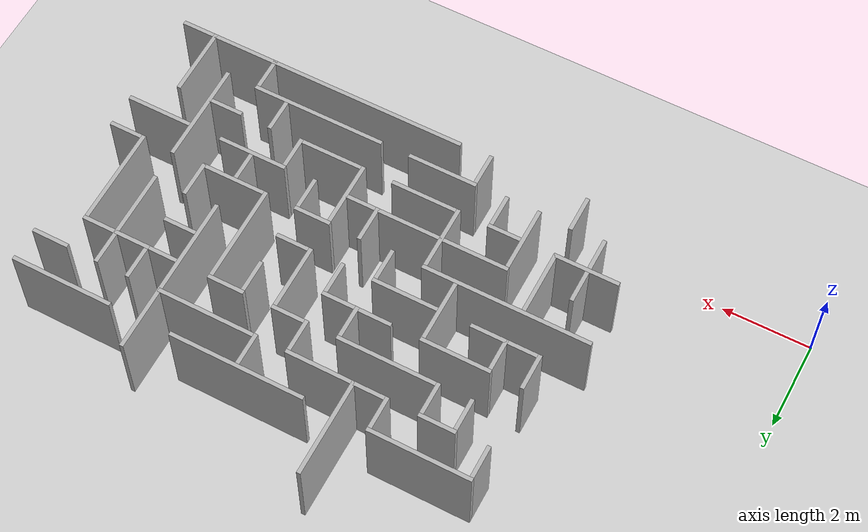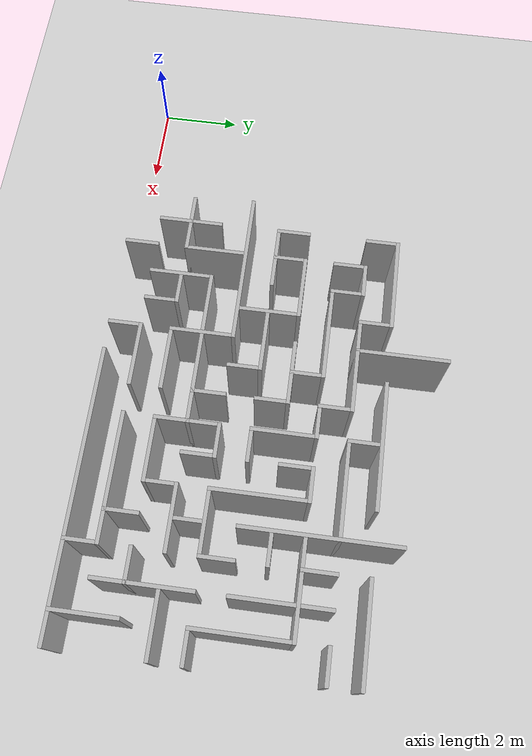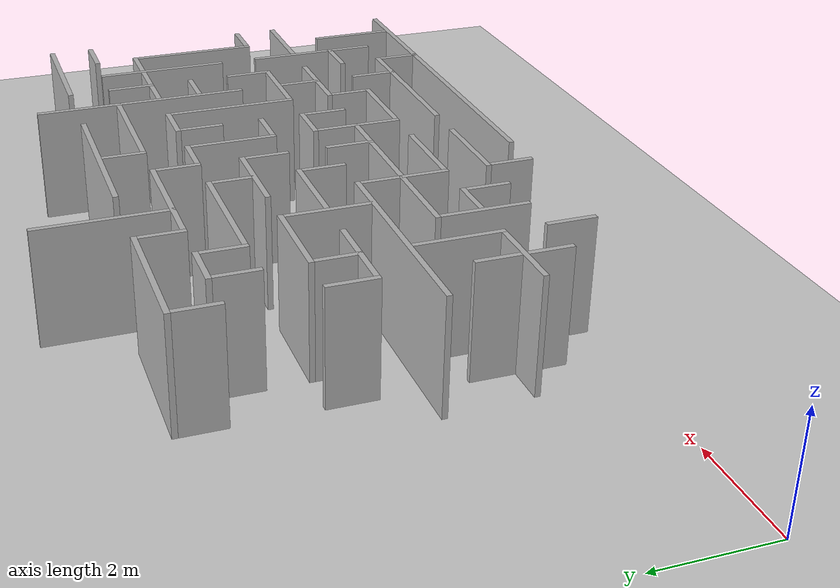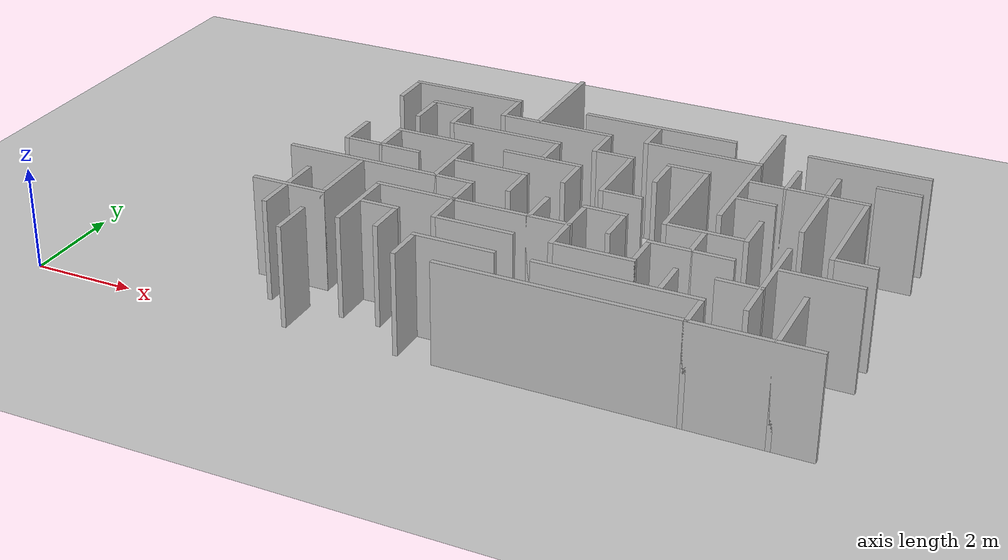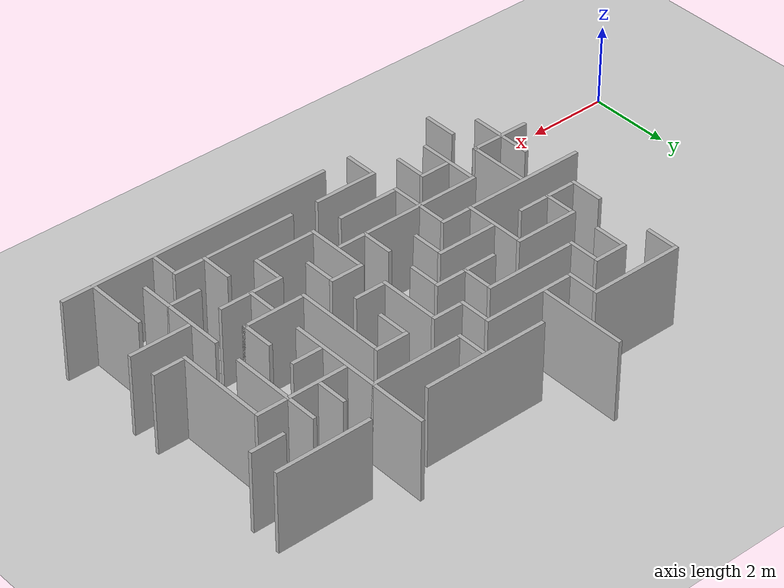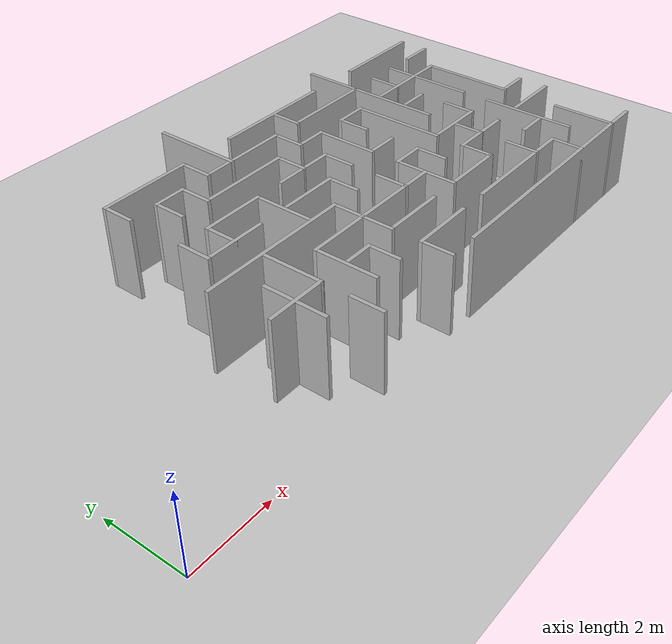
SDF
<sdf version="1.6">
 <world name="slam_world">
  <model name="ground_plane">
   <static>true</static>
   <link name="link">
    <collision name="collision">
     <geometry><plane><normal>0 0 1</normal><size>100 100</size></plane></geometry>
    </collision>
    <visual name="visual">
     <geometry><plane><normal>0 0 1</normal><size>100 100</size></plane></geometry>
     <material>
      <ambient>0.8 0.8 0.8 1</ambient>
      <diffuse>0.8 0.8 0.8 1</diffuse>
      <specular>0.8 0.8 0.8 1</specular>
     </material>
    </visual>
   </link>
  </model>
  <model name="wall_100">
   <static>true</static>
   <pose>7.500000000000001 7.083333333333334 1.0 0 0 0</pose>
   <link name="link">
    <collision name="collision">
     <geometry><box><size>0.0925925925925926 2.2222222222222223 2.0</size></box></geometry>
    </collision>
    <visual name="visual">
     <geometry><box><size>0.0925925925925926 2.2222222222222223 2.0</size></box></geometry>
     <material><ambient>0.5 0.5 0.5 1</ambient><diffuse>0.7 0.7 0.7 1</diffuse></material>
    </visual>
   </link>
  </model>
  <model name="wall_110">
   <static>true</static>
   <pose>11.944444444444446 5.601851851851852 1.0 0 0 0</pose>
   <link name="link">
    <collision name="collision">
     <geometry><box><size>0.0925925925925926 3.703703703703704 2.0</size></box></geometry>
    </collision>
    <visual name="visual">
     <geometry><box><size>0.0925925925925926 3.703703703703704 2.0</size></box></geometry>
     <material><ambient>0.5 0.5 0.5 1</ambient><diffuse>0.7 0.7 0.7 1</diffuse></material>
    </visual>
   </link>
  </model>
  <model name="wall_113">
   <static>true</static>
   <pose>5.648148148148149 6.7592592592592595 1.0 0 0 0</pose>
   <link name="link">
    <collision name="collision">
     <geometry><box><size>2.314814814814815 0.0925925925925926 2.0</size></box></geometry>
    </collision>
    <visual name="visual">
     <geometry><box><size>2.314814814814815 0.0925925925925926 2.0</size></box></geometry>
     <material><ambient>0.5 0.5 0.5 1</ambient><diffuse>0.7 0.7 0.7 1</diffuse></material>
    </visual>
   </link>
  </model>
  <model name="wall_114">
   <static>true</static>
   <pose>9.722222222222223 6.7592592592592595 1.0 0 0 0</pose>
   <link name="link">
    <collision name="collision">
     <geometry><box><size>3.055555555555556 0.0925925925925926 2.0</size></box></geometry>
    </collision>
    <visual name="visual">
     <geometry><box><size>3.055555555555556 0.0925925925925926 2.0</size></box></geometry>
     <material><ambient>0.5 0.5 0.5 1</ambient><diffuse>0.7 0.7 0.7 1</diffuse></material>
    </visual>
   </link>
  </model>
  <model name="wall_115">
   <static>true</static>
   <pose>13.796296296296298 6.7592592592592595 1.0 0 0 0</pose>
   <link name="link">
    <collision name="collision">
     <geometry><box><size>2.314814814814815 0.0925925925925926 2.0</size></box></geometry>
    </collision>
    <visual name="visual">
     <geometry><box><size>2.314814814814815 0.0925925925925926 2.0</size></box></geometry>
     <material><ambient>0.5 0.5 0.5 1</ambient><diffuse>0.7 0.7 0.7 1</diffuse></material>
    </visual>
   </link>
  </model>
  <model name="wall_118">
   <static>true</static>
   <pose>4.537037037037037 6.3425925925925934 1.0 0 0 0</pose>
   <link name="link">
    <collision name="collision">
     <geometry><box><size>0.0925925925925926 0.7407407407407408 2.0</size></box></geometry>
    </collision>
    <visual name="visual">
     <geometry><box><size>0.0925925925925926 0.7407407407407408 2.0</size></box></geometry>
     <material><ambient>0.5 0.5 0.5 1</ambient><diffuse>0.7 0.7 0.7 1</diffuse></material>
    </visual>
   </link>
  </model>
  <model name="wall_119">
   <static>true</static>
   <pose>6.7592592592592595 6.3425925925925934 1.0 0 0 0</pose>
   <link name="link">
    <collision name="collision">
     <geometry><box><size>0.0925925925925926 0.7407407407407408 2.0</size></box></geometry>
    </collision>
    <visual name="visual">
     <geometry><box><size>0.0925925925925926 0.7407407407407408 2.0</size></box></geometry>
     <material><ambient>0.5 0.5 0.5 1</ambient><diffuse>0.7 0.7 0.7 1</diffuse></material>
    </visual>
   </link>
  </model>
  <model name="wall_120">
   <static>true</static>
   <pose>9.722222222222223 6.3425925925925934 1.0 0 0 0</pose>
   <link name="link">
    <collision name="collision">
     <geometry><box><size>0.0925925925925926 0.7407407407407408 2.0</size></box></geometry>
    </collision>
    <visual name="visual">
     <geometry><box><size>0.0925925925925926 0.7407407407407408 2.0</size></box></geometry>
     <material><ambient>0.5 0.5 0.5 1</ambient><diffuse>0.7 0.7 0.7 1</diffuse></material>
    </visual>
   </link>
  </model>
  <model name="wall_123">
   <static>true</static>
   <pose>5.648148148148149 6.018518518518519 1.0 0 0 0</pose>
   <link name="link">
    <collision name="collision">
     <geometry><box><size>0.8333333333333334 0.0925925925925926 2.0</size></box></geometry>
    </collision>
    <visual name="visual">
     <geometry><box><size>0.8333333333333334 0.0925925925925926 2.0</size></box></geometry>
     <material><ambient>0.5 0.5 0.5 1</ambient><diffuse>0.7 0.7 0.7 1</diffuse></material>
    </visual>
   </link>
  </model>
  <model name="wall_124">
   <static>true</static>
   <pose>7.916666666666668 6.018518518518519 1.0 0 0 0</pose>
   <link name="link">
    <collision name="collision">
     <geometry><box><size>2.2222222222222223 0.0925925925925926 2.0</size></box></geometry>
    </collision>
    <visual name="visual">
     <geometry><box><size>2.2222222222222223 0.0925925925925926 2.0</size></box></geometry>
     <material><ambient>0.5 0.5 0.5 1</ambient><diffuse>0.7 0.7 0.7 1</diffuse></material>
    </visual>
   </link>
  </model>
  <model name="wall_125">
   <static>true</static>
   <pose>10.879629629629632 6.018518518518519 1.0 0 0 0</pose>
   <link name="link">
    <collision name="collision">
     <geometry><box><size>2.2222222222222223 0.0925925925925926 2.0</size></box></geometry>
    </collision>
    <visual name="visual">
     <geometry><box><size>2.2222222222222223 0.0925925925925926 2.0</size></box></geometry>
     <material><ambient>0.5 0.5 0.5 1</ambient><diffuse>0.7 0.7 0.7 1</diffuse></material>
    </visual>
   </link>
  </model>
  <model name="wall_126">
   <static>true</static>
   <pose>12.685185185185187 5.648148148148149 1.0 0 0 0</pose>
   <link name="link">
    <collision name="collision">
     <geometry><box><size>0.0925925925925926 0.8333333333333334 2.0</size></box></geometry>
    </collision>
    <visual name="visual">
     <geometry><box><size>0.0925925925925926 0.8333333333333334 2.0</size></box></geometry>
     <material><ambient>0.5 0.5 0.5 1</ambient><diffuse>0.7 0.7 0.7 1</diffuse></material>
    </visual>
   </link>
  </model>
  <model name="wall_127">
   <static>true</static>
   <pose>13.425925925925927 4.907407407407407 1.0 0 0 0</pose>
   <link name="link">
    <collision name="collision">
     <geometry><box><size>0.0925925925925926 2.314814814814815 2.0</size></box></geometry>
    </collision>
    <visual name="visual">
     <geometry><box><size>0.0925925925925926 2.314814814814815 2.0</size></box></geometry>
     <material><ambient>0.5 0.5 0.5 1</ambient><diffuse>0.7 0.7 0.7 1</diffuse></material>
    </visual>
   </link>
  </model>
  <model name="wall_128">
   <static>true</static>
   <pose>14.537037037037038 6.018518518518519 1.0 0 0 0</pose>
   <link name="link">
    <collision name="collision">
     <geometry><box><size>0.8333333333333334 0.0925925925925926 2.0</size></box></geometry>
    </collision>
    <visual name="visual">
     <geometry><box><size>0.8333333333333334 0.0925925925925926 2.0</size></box></geometry>
     <material><ambient>0.5 0.5 0.5 1</ambient><diffuse>0.7 0.7 0.7 1</diffuse></material>
    </visual>
   </link>
  </model>
  <model name="wall_130">
   <static>true</static>
   <pose>5.277777777777779 5.601851851851852 1.0 0 0 0</pose>
   <link name="link">
    <collision name="collision">
     <geometry><box><size>0.0925925925925926 0.7407407407407408 2.0</size></box></geometry>
    </collision>
    <visual name="visual">
     <geometry><box><size>0.0925925925925926 0.7407407407407408 2.0</size></box></geometry>
     <material><ambient>0.5 0.5 0.5 1</ambient><diffuse>0.7 0.7 0.7 1</diffuse></material>
    </visual>
   </link>
  </model>
  <model name="wall_131">
   <static>true</static>
   <pose>6.018518518518519 5.601851851851852 1.0 0 0 0</pose>
   <link name="link">
    <collision name="collision">
     <geometry><box><size>0.0925925925925926 0.7407407407407408 2.0</size></box></geometry>
    </collision>
    <visual name="visual">
     <geometry><box><size>0.0925925925925926 0.7407407407407408 2.0</size></box></geometry>
     <material><ambient>0.5 0.5 0.5 1</ambient><diffuse>0.7 0.7 0.7 1</diffuse></material>
    </visual>
   </link>
  </model>
  <model name="wall_132">
   <static>true</static>
   <pose>8.981481481481483 5.601851851851852 1.0 0 0 0</pose>
   <link name="link">
    <collision name="collision">
     <geometry><box><size>0.0925925925925926 0.7407407407407408 2.0</size></box></geometry>
    </collision>
    <visual name="visual">
     <geometry><box><size>0.0925925925925926 0.7407407407407408 2.0</size></box></geometry>
     <material><ambient>0.5 0.5 0.5 1</ambient><diffuse>0.7 0.7 0.7 1</diffuse></material>
    </visual>
   </link>
  </model>
  <model name="wall_136">
   <static>true</static>
   <pose>7.1759259259259265 5.277777777777779 1.0 0 0 0</pose>
   <link name="link">
    <collision name="collision">
     <geometry><box><size>2.2222222222222223 0.0925925925925926 2.0</size></box></geometry>
    </collision>
    <visual name="visual">
     <geometry><box><size>2.2222222222222223 0.0925925925925926 2.0</size></box></geometry>
     <material><ambient>0.5 0.5 0.5 1</ambient><diffuse>0.7 0.7 0.7 1</diffuse></material>
    </visual>
   </link>
  </model>
  <model name="wall_137">
   <static>true</static>
   <pose>9.398148148148149 5.277777777777779 1.0 0 0 0</pose>
   <link name="link">
    <collision name="collision">
     <geometry><box><size>0.7407407407407408 0.0925925925925926 2.0</size></box></geometry>
    </collision>
    <visual name="visual">
     <geometry><box><size>0.7407407407407408 0.0925925925925926 2.0</size></box></geometry>
     <material><ambient>0.5 0.5 0.5 1</ambient><diffuse>0.7 0.7 0.7 1</diffuse></material>
    </visual>
   </link>
  </model>
  <model name="wall_138">
   <static>true</static>
   <pose>10.833333333333334 5.277777777777779 1.0 0 0 0</pose>
   <link name="link">
    <collision name="collision">
     <geometry><box><size>0.8333333333333334 0.0925925925925926 2.0</size></box></geometry>
    </collision>
    <visual name="visual">
     <geometry><box><size>0.8333333333333334 0.0925925925925926 2.0</size></box></geometry>
     <material><ambient>0.5 0.5 0.5 1</ambient><diffuse>0.7 0.7 0.7 1</diffuse></material>
    </visual>
   </link>
  </model>
  <model name="wall_139">
   <static>true</static>
   <pose>13.101851851851853 5.277777777777779 1.0 0 0 0</pose>
   <link name="link">
    <collision name="collision">
     <geometry><box><size>2.2222222222222223 0.0925925925925926 2.0</size></box></geometry>
    </collision>
    <visual name="visual">
     <geometry><box><size>2.2222222222222223 0.0925925925925926 2.0</size></box></geometry>
     <material><ambient>0.5 0.5 0.5 1</ambient><diffuse>0.7 0.7 0.7 1</diffuse></material>
    </visual>
   </link>
  </model>
  <model name="wall_141">
   <static>true</static>
   <pose>8.240740740740742 4.861111111111112 1.0 0 0 0</pose>
   <link name="link">
    <collision name="collision">
     <geometry><box><size>0.0925925925925926 0.7407407407407408 2.0</size></box></geometry>
    </collision>
    <visual name="visual">
     <geometry><box><size>0.0925925925925926 0.7407407407407408 2.0</size></box></geometry>
     <material><ambient>0.5 0.5 0.5 1</ambient><diffuse>0.7 0.7 0.7 1</diffuse></material>
    </visual>
   </link>
  </model>
  <model name="wall_142">
   <static>true</static>
   <pose>9.722222222222223 4.490740740740741 1.0 0 0 0</pose>
   <link name="link">
    <collision name="collision">
     <geometry><box><size>0.0925925925925926 1.4814814814814816 2.0</size></box></geometry>
    </collision>
    <visual name="visual">
     <geometry><box><size>0.0925925925925926 1.4814814814814816 2.0</size></box></geometry>
     <material><ambient>0.5 0.5 0.5 1</ambient><diffuse>0.7 0.7 0.7 1</diffuse></material>
    </visual>
   </link>
  </model>
  <model name="wall_143">
   <static>true</static>
   <pose>10.462962962962964 4.861111111111112 1.0 0 0 0</pose>
   <link name="link">
    <collision name="collision">
     <geometry><box><size>0.0925925925925926 0.7407407407407408 2.0</size></box></geometry>
    </collision>
    <visual name="visual">
     <geometry><box><size>0.0925925925925926 0.7407407407407408 2.0</size></box></geometry>
     <material><ambient>0.5 0.5 0.5 1</ambient><diffuse>0.7 0.7 0.7 1</diffuse></material>
    </visual>
   </link>
  </model>
  <model name="wall_144">
   <static>true</static>
   <pose>11.203703703703704 4.120370370370371 1.0 0 0 0</pose>
   <link name="link">
    <collision name="collision">
     <geometry><box><size>0.0925925925925926 2.2222222222222223 2.0</size></box></geometry>
    </collision>
    <visual name="visual">
     <geometry><box><size>0.0925925925925926 2.2222222222222223 2.0</size></box></geometry>
     <material><ambient>0.5 0.5 0.5 1</ambient><diffuse>0.7 0.7 0.7 1</diffuse></material>
    </visual>
   </link>
  </model>
  <model name="wall_145">
   <static>true</static>
   <pose>14.166666666666668 4.120370370370371 1.0 0 0 0</pose>
   <link name="link">
    <collision name="collision">
     <geometry><box><size>0.0925925925925926 2.2222222222222223 2.0</size></box></geometry>
    </collision>
    <visual name="visual">
     <geometry><box><size>0.0925925925925926 2.2222222222222223 2.0</size></box></geometry>
     <material><ambient>0.5 0.5 0.5 1</ambient><diffuse>0.7 0.7 0.7 1</diffuse></material>
    </visual>
   </link>
  </model>
  <model name="wall_148">
   <static>true</static>
   <pose>4.537037037037037 4.166666666666667 1.0 0 0 0</pose>
   <link name="link">
    <collision name="collision">
     <geometry><box><size>0.0925925925925926 0.8333333333333334 2.0</size></box></geometry>
    </collision>
    <visual name="visual">
     <geometry><box><size>0.0925925925925926 0.8333333333333334 2.0</size></box></geometry>
     <material><ambient>0.5 0.5 0.5 1</ambient><diffuse>0.7 0.7 0.7 1</diffuse></material>
    </visual>
   </link>
  </model>
  <model name="wall_149">
   <static>true</static>
   <pose>6.018518518518519 4.537037037037037 1.0 0 0 0</pose>
   <link name="link">
    <collision name="collision">
     <geometry><box><size>1.5740740740740742 0.0925925925925926 2.0</size></box></geometry>
    </collision>
    <visual name="visual">
     <geometry><box><size>1.5740740740740742 0.0925925925925926 2.0</size></box></geometry>
     <material><ambient>0.5 0.5 0.5 1</ambient><diffuse>0.7 0.7 0.7 1</diffuse></material>
    </visual>
   </link>
  </model>
  <model name="wall_150">
   <static>true</static>
   <pose>8.240740740740742 4.537037037037037 1.0 0 0 0</pose>
   <link name="link">
    <collision name="collision">
     <geometry><box><size>1.5740740740740742 0.0925925925925926 2.0</size></box></geometry>
    </collision>
    <visual name="visual">
     <geometry><box><size>1.5740740740740742 0.0925925925925926 2.0</size></box></geometry>
     <material><ambient>0.5 0.5 0.5 1</ambient><diffuse>0.7 0.7 0.7 1</diffuse></material>
    </visual>
   </link>
  </model>
  <model name="wall_151">
   <static>true</static>
   <pose>12.361111111111112 4.537037037037037 1.0 0 0 0</pose>
   <link name="link">
    <collision name="collision">
     <geometry><box><size>0.7407407407407408 0.0925925925925926 2.0</size></box></geometry>
    </collision>
    <visual name="visual">
     <geometry><box><size>0.7407407407407408 0.0925925925925926 2.0</size></box></geometry>
     <material><ambient>0.5 0.5 0.5 1</ambient><diffuse>0.7 0.7 0.7 1</diffuse></material>
    </visual>
   </link>
  </model>
  <model name="wall_154">
   <static>true</static>
   <pose>5.277777777777779 4.120370370370371 1.0 0 0 0</pose>
   <link name="link">
    <collision name="collision">
     <geometry><box><size>0.0925925925925926 0.7407407407407408 2.0</size></box></geometry>
    </collision>
    <visual name="visual">
     <geometry><box><size>0.0925925925925926 0.7407407407407408 2.0</size></box></geometry>
     <material><ambient>0.5 0.5 0.5 1</ambient><diffuse>0.7 0.7 0.7 1</diffuse></material>
    </visual>
   </link>
  </model>
  <model name="wall_155">
   <static>true</static>
   <pose>6.7592592592592595 3.7500000000000004 1.0 0 0 0</pose>
   <link name="link">
    <collision name="collision">
     <geometry><box><size>0.0925925925925926 1.4814814814814816 2.0</size></box></geometry>
    </collision>
    <visual name="visual">
     <geometry><box><size>0.0925925925925926 1.4814814814814816 2.0</size></box></geometry>
     <material><ambient>0.5 0.5 0.5 1</ambient><diffuse>0.7 0.7 0.7 1</diffuse></material>
    </visual>
   </link>
  </model>
  <model name="wall_156">
   <static>true</static>
   <pose>8.981481481481483 4.120370370370371 1.0 0 0 0</pose>
   <link name="link">
    <collision name="collision">
     <geometry><box><size>0.0925925925925926 0.7407407407407408 2.0</size></box></geometry>
    </collision>
    <visual name="visual">
     <geometry><box><size>0.0925925925925926 0.7407407407407408 2.0</size></box></geometry>
     <material><ambient>0.5 0.5 0.5 1</ambient><diffuse>0.7 0.7 0.7 1</diffuse></material>
    </visual>
   </link>
  </model>
  <model name="wall_158">
   <static>true</static>
   <pose>5.324074074074074 3.7962962962962967 1.0 0 0 0</pose>
   <link name="link">
    <collision name="collision">
     <geometry><box><size>1.4814814814814816 0.0925925925925926 2.0</size></box></geometry>
    </collision>
    <visual name="visual">
     <geometry><box><size>1.4814814814814816 0.0925925925925926 2.0</size></box></geometry>
     <material><ambient>0.5 0.5 0.5 1</ambient><diffuse>0.7 0.7 0.7 1</diffuse></material>
    </visual>
   </link>
  </model>
  <model name="wall_159">
   <static>true</static>
   <pose>7.546296296296297 3.7962962962962967 1.0 0 0 0</pose>
   <link name="link">
    <collision name="collision">
     <geometry><box><size>1.4814814814814816 0.0925925925925926 2.0</size></box></geometry>
    </collision>
    <visual name="visual">
     <geometry><box><size>1.4814814814814816 0.0925925925925926 2.0</size></box></geometry>
     <material><ambient>0.5 0.5 0.5 1</ambient><diffuse>0.7 0.7 0.7 1</diffuse></material>
    </visual>
   </link>
  </model>
  <model name="wall_160">
   <static>true</static>
   <pose>10.13888888888889 3.7962962962962967 1.0 0 0 0</pose>
   <link name="link">
    <collision name="collision">
     <geometry><box><size>0.7407407407407408 0.0925925925925926 2.0</size></box></geometry>
    </collision>
    <visual name="visual">
     <geometry><box><size>0.7407407407407408 0.0925925925925926 2.0</size></box></geometry>
     <material><ambient>0.5 0.5 0.5 1</ambient><diffuse>0.7 0.7 0.7 1</diffuse></material>
    </visual>
   </link>
  </model>
  <model name="wall_161">
   <static>true</static>
   <pose>12.685185185185187 3.425925925925926 1.0 0 0 0</pose>
   <link name="link">
    <collision name="collision">
     <geometry><box><size>0.0925925925925926 0.8333333333333334 2.0</size></box></geometry>
    </collision>
    <visual name="visual">
     <geometry><box><size>0.0925925925925926 0.8333333333333334 2.0</size></box></geometry>
     <material><ambient>0.5 0.5 0.5 1</ambient><diffuse>0.7 0.7 0.7 1</diffuse></material>
    </visual>
   </link>
  </model>
  <model name="wall_163">
   <static>true</static>
   <pose>8.240740740740742 3.3796296296296298 1.0 0 0 0</pose>
   <link name="link">
    <collision name="collision">
     <geometry><box><size>0.0925925925925926 0.7407407407407408 2.0</size></box></geometry>
    </collision>
    <visual name="visual">
     <geometry><box><size>0.0925925925925926 0.7407407407407408 2.0</size></box></geometry>
     <material><ambient>0.5 0.5 0.5 1</ambient><diffuse>0.7 0.7 0.7 1</diffuse></material>
    </visual>
   </link>
  </model>
  <model name="wall_166">
   <static>true</static>
   <pose>5.648148148148149 3.055555555555556 1.0 0 0 0</pose>
   <link name="link">
    <collision name="collision">
     <geometry><box><size>3.7962962962962967 0.0925925925925926 2.0</size></box></geometry>
    </collision>
    <visual name="visual">
     <geometry><box><size>3.7962962962962967 0.0925925925925926 2.0</size></box></geometry>
     <material><ambient>0.5 0.5 0.5 1</ambient><diffuse>0.7 0.7 0.7 1</diffuse></material>
    </visual>
   </link>
  </model>
  <model name="wall_167">
   <static>true</static>
   <pose>8.981481481481483 2.6851851851851856 1.0 0 0 0</pose>
   <link name="link">
    <collision name="collision">
     <geometry><box><size>0.0925925925925926 0.8333333333333334 2.0</size></box></geometry>
    </collision>
    <visual name="visual">
     <geometry><box><size>0.0925925925925926 0.8333333333333334 2.0</size></box></geometry>
     <material><ambient>0.5 0.5 0.5 1</ambient><diffuse>0.7 0.7 0.7 1</diffuse></material>
    </visual>
   </link>
  </model>
  <model name="wall_168">
   <static>true</static>
   <pose>10.092592592592593 3.055555555555556 1.0 0 0 0</pose>
   <link name="link">
    <collision name="collision">
     <geometry><box><size>0.8333333333333334 0.0925925925925926 2.0</size></box></geometry>
    </collision>
    <visual name="visual">
     <geometry><box><size>0.8333333333333334 0.0925925925925926 2.0</size></box></geometry>
     <material><ambient>0.5 0.5 0.5 1</ambient><diffuse>0.7 0.7 0.7 1</diffuse></material>
    </visual>
   </link>
  </model>
  <model name="wall_169">
   <static>true</static>
   <pose>11.990740740740742 3.055555555555556 1.0 0 0 0</pose>
   <link name="link">
    <collision name="collision">
     <geometry><box><size>1.4814814814814816 0.0925925925925926 2.0</size></box></geometry>
    </collision>
    <visual name="visual">
     <geometry><box><size>1.4814814814814816 0.0925925925925926 2.0</size></box></geometry>
     <material><ambient>0.5 0.5 0.5 1</ambient><diffuse>0.7 0.7 0.7 1</diffuse></material>
    </visual>
   </link>
  </model>
  <model name="wall_170">
   <static>true</static>
   <pose>13.425925925925927 1.9444444444444446 1.0 0 0 0</pose>
   <link name="link">
    <collision name="collision">
     <geometry><box><size>0.0925925925925926 2.314814814814815 2.0</size></box></geometry>
    </collision>
    <visual name="visual">
     <geometry><box><size>0.0925925925925926 2.314814814814815 2.0</size></box></geometry>
     <material><ambient>0.5 0.5 0.5 1</ambient><diffuse>0.7 0.7 0.7 1</diffuse></material>
    </visual>
   </link>
  </model>
  <model name="wall_171">
   <static>true</static>
   <pose>14.583333333333334 3.055555555555556 1.0 0 0 0</pose>
   <link name="link">
    <collision name="collision">
     <geometry><box><size>0.7407407407407408 0.0925925925925926 2.0</size></box></geometry>
    </collision>
    <visual name="visual">
     <geometry><box><size>0.7407407407407408 0.0925925925925926 2.0</size></box></geometry>
     <material><ambient>0.5 0.5 0.5 1</ambient><diffuse>0.7 0.7 0.7 1</diffuse></material>
    </visual>
   </link>
  </model>
  <model name="wall_172">
   <static>true</static>
   <pose>5.277777777777779 2.2685185185185186 1.0 0 0 0</pose>
   <link name="link">
    <collision name="collision">
     <geometry><box><size>0.0925925925925926 1.4814814814814816 2.0</size></box></geometry>
    </collision>
    <visual name="visual">
     <geometry><box><size>0.0925925925925926 1.4814814814814816 2.0</size></box></geometry>
     <material><ambient>0.5 0.5 0.5 1</ambient><diffuse>0.7 0.7 0.7 1</diffuse></material>
    </visual>
   </link>
  </model>
  <model name="wall_173">
   <static>true</static>
   <pose>7.500000000000001 2.2685185185185186 1.0 0 0 0</pose>
   <link name="link">
    <collision name="collision">
     <geometry><box><size>0.0925925925925926 1.4814814814814816 2.0</size></box></geometry>
    </collision>
    <visual name="visual">
     <geometry><box><size>0.0925925925925926 1.4814814814814816 2.0</size></box></geometry>
     <material><ambient>0.5 0.5 0.5 1</ambient><diffuse>0.7 0.7 0.7 1</diffuse></material>
    </visual>
   </link>
  </model>
  <model name="wall_174">
   <static>true</static>
   <pose>9.722222222222223 2.2685185185185186 1.0 0 0 0</pose>
   <link name="link">
    <collision name="collision">
     <geometry><box><size>0.0925925925925926 1.4814814814814816 2.0</size></box></geometry>
    </collision>
    <visual name="visual">
     <geometry><box><size>0.0925925925925926 1.4814814814814816 2.0</size></box></geometry>
     <material><ambient>0.5 0.5 0.5 1</ambient><diffuse>0.7 0.7 0.7 1</diffuse></material>
    </visual>
   </link>
  </model>
  <model name="wall_175">
   <static>true</static>
   <pose>10.462962962962964 2.6388888888888893 1.0 0 0 0</pose>
   <link name="link">
    <collision name="collision">
     <geometry><box><size>0.0925925925925926 0.7407407407407408 2.0</size></box></geometry>
    </collision>
    <visual name="visual">
     <geometry><box><size>0.0925925925925926 0.7407407407407408 2.0</size></box></geometry>
     <material><ambient>0.5 0.5 0.5 1</ambient><diffuse>0.7 0.7 0.7 1</diffuse></material>
    </visual>
   </link>
  </model>
  <model name="wall_176">
   <static>true</static>
   <pose>11.944444444444446 2.6388888888888893 1.0 0 0 0</pose>
   <link name="link">
    <collision name="collision">
     <geometry><box><size>0.0925925925925926 0.7407407407407408 2.0</size></box></geometry>
    </collision>
    <visual name="visual">
     <geometry><box><size>0.0925925925925926 0.7407407407407408 2.0</size></box></geometry>
     <material><ambient>0.5 0.5 0.5 1</ambient><diffuse>0.7 0.7 0.7 1</diffuse></material>
    </visual>
   </link>
  </model>
  <model name="wall_180">
   <static>true</static>
   <pose>4.537037037037037 1.5740740740740742 1.0 0 0 0</pose>
   <link name="link">
    <collision name="collision">
     <geometry><box><size>0.0925925925925926 1.5740740740740742 2.0</size></box></geometry>
    </collision>
    <visual name="visual">
     <geometry><box><size>0.0925925925925926 1.5740740740740742 2.0</size></box></geometry>
     <material><ambient>0.5 0.5 0.5 1</ambient><diffuse>0.7 0.7 0.7 1</diffuse></material>
    </visual>
   </link>
  </model>
  <model name="wall_181">
   <static>true</static>
   <pose>7.870370370370371 2.314814814814815 1.0 0 0 0</pose>
   <link name="link">
    <collision name="collision">
     <geometry><box><size>3.7962962962962967 0.0925925925925926 2.0</size></box></geometry>
    </collision>
    <visual name="visual">
     <geometry><box><size>3.7962962962962967 0.0925925925925926 2.0</size></box></geometry>
     <material><ambient>0.5 0.5 0.5 1</ambient><diffuse>0.7 0.7 0.7 1</diffuse></material>
    </visual>
   </link>
  </model>
  <model name="wall_182">
   <static>true</static>
   <pose>11.944444444444446 2.314814814814815 1.0 0 0 0</pose>
   <link name="link">
    <collision name="collision">
     <geometry><box><size>1.5740740740740742 0.0925925925925926 2.0</size></box></geometry>
    </collision>
    <visual name="visual">
     <geometry><box><size>1.5740740740740742 0.0925925925925926 2.0</size></box></geometry>
     <material><ambient>0.5 0.5 0.5 1</ambient><diffuse>0.7 0.7 0.7 1</diffuse></material>
    </visual>
   </link>
  </model>
  <model name="wall_183">
   <static>true</static>
   <pose>14.212962962962964 2.314814814814815 1.0 0 0 0</pose>
   <link name="link">
    <collision name="collision">
     <geometry><box><size>1.4814814814814816 0.0925925925925926 2.0</size></box></geometry>
    </collision>
    <visual name="visual">
     <geometry><box><size>1.4814814814814816 0.0925925925925926 2.0</size></box></geometry>
     <material><ambient>0.5 0.5 0.5 1</ambient><diffuse>0.7 0.7 0.7 1</diffuse></material>
    </visual>
   </link>
  </model>
  <model name="wall_185">
   <static>true</static>
   <pose>6.018518518518519 1.527777777777778 1.0 0 0 0</pose>
   <link name="link">
    <collision name="collision">
     <geometry><box><size>0.0925925925925926 1.4814814814814816 2.0</size></box></geometry>
    </collision>
    <visual name="visual">
     <geometry><box><size>0.0925925925925926 1.4814814814814816 2.0</size></box></geometry>
     <material><ambient>0.5 0.5 0.5 1</ambient><diffuse>0.7 0.7 0.7 1</diffuse></material>
    </visual>
   </link>
  </model>
  <model name="wall_186">
   <static>true</static>
   <pose>11.203703703703704 1.8981481481481484 1.0 0 0 0</pose>
   <link name="link">
    <collision name="collision">
     <geometry><box><size>0.0925925925925926 0.7407407407407408 2.0</size></box></geometry>
    </collision>
    <visual name="visual">
     <geometry><box><size>0.0925925925925926 0.7407407407407408 2.0</size></box></geometry>
     <material><ambient>0.5 0.5 0.5 1</ambient><diffuse>0.7 0.7 0.7 1</diffuse></material>
    </visual>
   </link>
  </model>
  <model name="wall_189">
   <static>true</static>
   <pose>4.583333333333334 1.5740740740740742 1.0 0 0 0</pose>
   <link name="link">
    <collision name="collision">
     <geometry><box><size>1.4814814814814816 0.0925925925925926 2.0</size></box></geometry>
    </collision>
    <visual name="visual">
     <geometry><box><size>1.4814814814814816 0.0925925925925926 2.0</size></box></geometry>
     <material><ambient>0.5 0.5 0.5 1</ambient><diffuse>0.7 0.7 0.7 1</diffuse></material>
    </visual>
   </link>
  </model>
  <model name="wall_190">
   <static>true</static>
   <pose>6.435185185185186 1.5740740740740742 1.0 0 0 0</pose>
   <link name="link">
    <collision name="collision">
     <geometry><box><size>0.7407407407407408 0.0925925925925926 2.0</size></box></geometry>
    </collision>
    <visual name="visual">
     <geometry><box><size>0.7407407407407408 0.0925925925925926 2.0</size></box></geometry>
     <material><ambient>0.5 0.5 0.5 1</ambient><diffuse>0.7 0.7 0.7 1</diffuse></material>
    </visual>
   </link>
  </model>
  <model name="wall_191">
   <static>true</static>
   <pose>8.287037037037038 1.5740740740740742 1.0 0 0 0</pose>
   <link name="link">
    <collision name="collision">
     <geometry><box><size>1.4814814814814816 0.0925925925925926 2.0</size></box></geometry>
    </collision>
    <visual name="visual">
     <geometry><box><size>1.4814814814814816 0.0925925925925926 2.0</size></box></geometry>
     <material><ambient>0.5 0.5 0.5 1</ambient><diffuse>0.7 0.7 0.7 1</diffuse></material>
    </visual>
   </link>
  </model>
  <model name="wall_192">
   <static>true</static>
   <pose>10.50925925925926 1.5740740740740742 1.0 0 0 0</pose>
   <link name="link">
    <collision name="collision">
     <geometry><box><size>1.4814814814814816 0.0925925925925926 2.0</size></box></geometry>
    </collision>
    <visual name="visual">
     <geometry><box><size>1.4814814814814816 0.0925925925925926 2.0</size></box></geometry>
     <material><ambient>0.5 0.5 0.5 1</ambient><diffuse>0.7 0.7 0.7 1</diffuse></material>
    </visual>
   </link>
  </model>
  <model name="wall_193">
   <static>true</static>
   <pose>11.944444444444446 1.2037037037037037 1.0 0 0 0</pose>
   <link name="link">
    <collision name="collision">
     <geometry><box><size>0.0925925925925926 0.8333333333333334 2.0</size></box></geometry>
    </collision>
    <visual name="visual">
     <geometry><box><size>0.0925925925925926 0.8333333333333334 2.0</size></box></geometry>
     <material><ambient>0.5 0.5 0.5 1</ambient><diffuse>0.7 0.7 0.7 1</diffuse></material>
    </visual>
   </link>
  </model>
  <model name="wall_194">
   <static>true</static>
   <pose>13.055555555555557 1.5740740740740742 1.0 0 0 0</pose>
   <link name="link">
    <collision name="collision">
     <geometry><box><size>0.8333333333333334 0.0925925925925926 2.0</size></box></geometry>
    </collision>
    <visual name="visual">
     <geometry><box><size>0.8333333333333334 0.0925925925925926 2.0</size></box></geometry>
     <material><ambient>0.5 0.5 0.5 1</ambient><diffuse>0.7 0.7 0.7 1</diffuse></material>
    </visual>
   </link>
  </model>
  <model name="wall_195">
   <static>true</static>
   <pose>14.166666666666668 0.8333333333333334 1.0 0 0 0</pose>
   <link name="link">
    <collision name="collision">
     <geometry><box><size>0.0925925925925926 1.5740740740740742 2.0</size></box></geometry>
    </collision>
    <visual name="visual">
     <geometry><box><size>0.0925925925925926 1.5740740740740742 2.0</size></box></geometry>
     <material><ambient>0.5 0.5 0.5 1</ambient><diffuse>0.7 0.7 0.7 1</diffuse></material>
    </visual>
   </link>
  </model>
  <model name="wall_197">
   <static>true</static>
   <pose>6.7592592592592595 1.1574074074074074 1.0 0 0 0</pose>
   <link name="link">
    <collision name="collision">
     <geometry><box><size>0.0925925925925926 0.7407407407407408 2.0</size></box></geometry>
    </collision>
    <visual name="visual">
     <geometry><box><size>0.0925925925925926 0.7407407407407408 2.0</size></box></geometry>
     <material><ambient>0.5 0.5 0.5 1</ambient><diffuse>0.7 0.7 0.7 1</diffuse></material>
    </visual>
   </link>
  </model>
  <model name="wall_200">
   <static>true</static>
   <pose>5.277777777777779 0.462962962962963 1.0 0 0 0</pose>
   <link name="link">
    <collision name="collision">
     <geometry><box><size>0.0925925925925926 0.8333333333333334 2.0</size></box></geometry>
    </collision>
    <visual name="visual">
     <geometry><box><size>0.0925925925925926 0.8333333333333334 2.0</size></box></geometry>
     <material><ambient>0.5 0.5 0.5 1</ambient><diffuse>0.7 0.7 0.7 1</diffuse></material>
    </visual>
   </link>
  </model>
  <model name="wall_201">
   <static>true</static>
   <pose>8.240740740740742 0.8333333333333334 1.0 0 0 0</pose>
   <link name="link">
    <collision name="collision">
     <geometry><box><size>1.5740740740740742 0.0925925925925926 2.0</size></box></geometry>
    </collision>
    <visual name="visual">
     <geometry><box><size>1.5740740740740742 0.0925925925925926 2.0</size></box></geometry>
     <material><ambient>0.5 0.5 0.5 1</ambient><diffuse>0.7 0.7 0.7 1</diffuse></material>
    </visual>
   </link>
  </model>
  <model name="wall_202">
   <static>true</static>
   <pose>11.203703703703704 0.8333333333333334 1.0 0 0 0</pose>
   <link name="link">
    <collision name="collision">
     <geometry><box><size>3.055555555555556 0.0925925925925926 2.0</size></box></geometry>
    </collision>
    <visual name="visual">
     <geometry><box><size>3.055555555555556 0.0925925925925926 2.0</size></box></geometry>
     <material><ambient>0.5 0.5 0.5 1</ambient><diffuse>0.7 0.7 0.7 1</diffuse></material>
    </visual>
   </link>
  </model>
  <model name="wall_204">
   <static>true</static>
   <pose>7.500000000000001 0.4166666666666667 1.0 0 0 0</pose>
   <link name="link">
    <collision name="collision">
     <geometry><box><size>0.0925925925925926 0.7407407407407408 2.0</size></box></geometry>
    </collision>
    <visual name="visual">
     <geometry><box><size>0.0925925925925926 0.7407407407407408 2.0</size></box></geometry>
     <material><ambient>0.5 0.5 0.5 1</ambient><diffuse>0.7 0.7 0.7 1</diffuse></material>
    </visual>
   </link>
  </model>
  <model name="wall_205">
   <static>true</static>
   <pose>12.685185185185187 0.4166666666666667 1.0 0 0 0</pose>
   <link name="link">
    <collision name="collision">
     <geometry><box><size>0.0925925925925926 0.7407407407407408 2.0</size></box></geometry>
    </collision>
    <visual name="visual">
     <geometry><box><size>0.0925925925925926 0.7407407407407408 2.0</size></box></geometry>
     <material><ambient>0.5 0.5 0.5 1</ambient><diffuse>0.7 0.7 0.7 1</diffuse></material>
    </visual>
   </link>
  </model>
  <model name="wall_207">
   <static>true</static>
   <pose>11.574074074074074 0.0925925925925926 1.0 0 0 0</pose>
   <link name="link">
    <collision name="collision">
     <geometry><box><size>6.7592592592592595 0.0925925925925926 2.0</size></box></geometry>
    </collision>
    <visual name="visual">
     <geometry><box><size>6.7592592592592595 0.0925925925925926 2.0</size></box></geometry>
     <material><ambient>0.5 0.5 0.5 1</ambient><diffuse>0.7 0.7 0.7 1</diffuse></material>
    </visual>
   </link>
  </model>
 </world>
</sdf>
